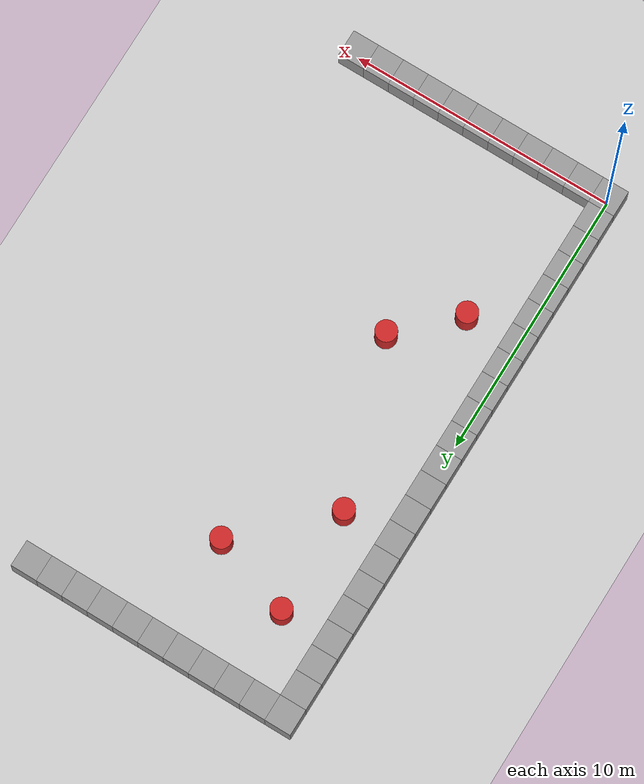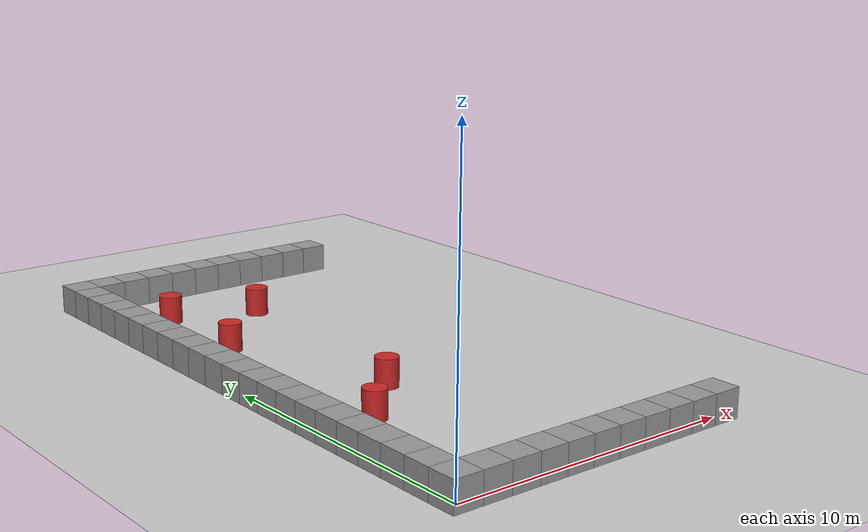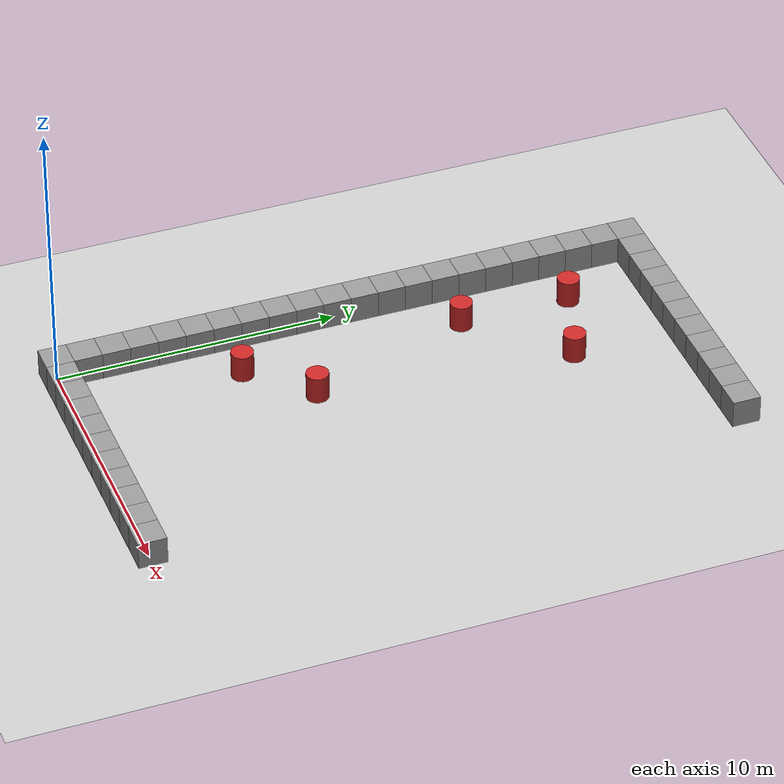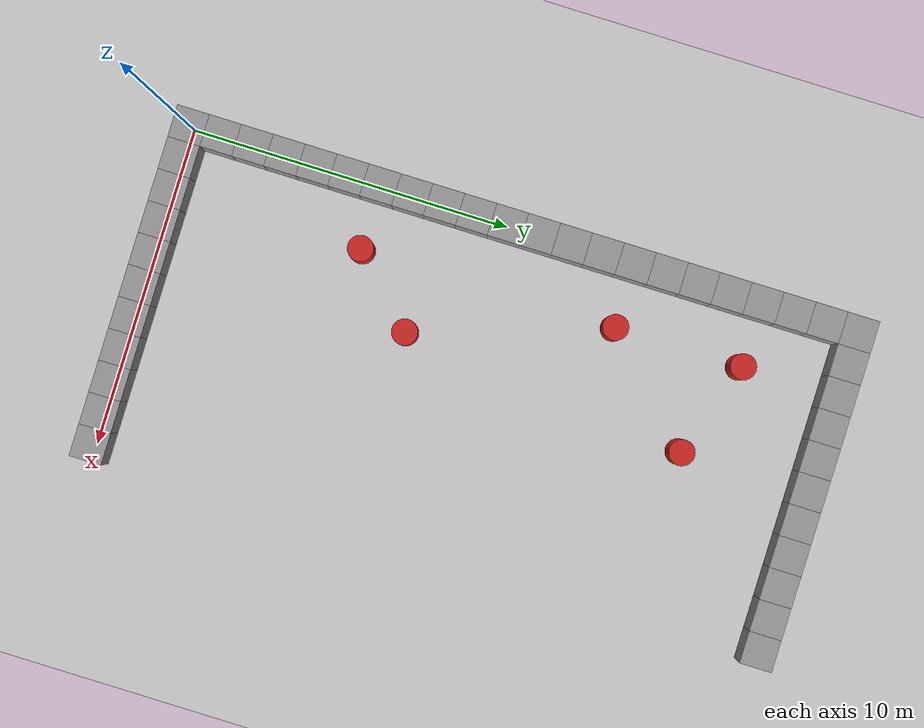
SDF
<sdf version="1.4">
 <world name="default">
  <model name="ground_plane">
   <static>1</static>
   <link name="link">
    <collision name="collision">
     <geometry><plane><normal>0 0 1</normal><size>100 100</size></plane></geometry>
     <surface><friction><ode><mu>100</mu><mu2>50</mu2></ode></friction></surface>
    </collision>
    <visual name="visual">
     <cast_shadows>0</cast_shadows>
     <geometry><plane><normal>0 0 1</normal><size>100 100</size></plane></geometry>
     <material>
      <script><uri>file://media/materials/scripts/gazebo.material</uri><name>Gazebo/Grey</name></script>
     </material>
    </visual>
    <velocity_decay><linear>0</linear><angular>0</angular></velocity_decay>
   </link>
  </model>
  <model name="unit_box_1">
   <pose>0 0 0.5 0 -0 0.0</pose>
   <link name="link">
    <inertial>
     <mass>1</mass>
     <inertia><ixx>1</ixx><ixy>0</ixy><ixz>0</ixz><iyy>1</iyy><iyz>0</iyz><izz>1</izz></inertia>
    </inertial>
    <collision name="collision"><geometry><box><size>1 1 1</size></box></geometry></collision>
    <visual name="visual">
     <geometry><box><size>1 1 1</size></box></geometry>
     <material>
      <script><uri>file://media/materials/scripts/gazebo.material</uri><name>Gazebo/Grey</name></script>
     </material>
    </visual>
    <velocity_decay><linear>0</linear><angular>0</angular></velocity_decay>
   </link>
   <static>1</static>
  </model>
  <model name="unit_box_40">
   <pose>0 1 0.5 0 -0 0</pose>
   <link name="link">
    <inertial>
     <mass>1</mass>
     <inertia><ixx>1</ixx><ixy>0</ixy><ixz>0</ixz><iyy>1</iyy><iyz>0</iyz><izz>1</izz></inertia>
    </inertial>
    <collision name="collision"><geometry><box><size>1 1 1</size></box></geometry></collision>
    <visual name="visual">
     <geometry><box><size>1 1 1</size></box></geometry>
     <material>
      <script><uri>file://media/materials/scripts/gazebo.material</uri><name>Gazebo/Grey</name></script>
     </material>
    </visual>
    <velocity_decay><linear>0</linear><angular>0</angular></velocity_decay>
   </link>
   <static>1</static>
  </model>
  <model name="unit_box_41">
   <pose>0 2 0.5 0 -0 0</pose>
   <link name="link">
    <inertial>
     <mass>1</mass>
     <inertia><ixx>1</ixx><ixy>0</ixy><ixz>0</ixz><iyy>1</iyy><iyz>0</iyz><izz>1</izz></inertia>
    </inertial>
    <collision name="collision"><geometry><box><size>1 1 1</size></box></geometry></collision>
    <visual name="visual">
     <geometry><box><size>1 1 1</size></box></geometry>
     <material>
      <script><uri>file://media/materials/scripts/gazebo.material</uri><name>Gazebo/Grey</name></script>
     </material>
    </visual>
    <velocity_decay><linear>0</linear><angular>0</angular></velocity_decay>
   </link>
   <static>1</static>
  </model>
  <model name="unit_box_42">
   <pose>0 3 0.5 0 -0 0</pose>
   <link name="link">
    <inertial>
     <mass>1</mass>
     <inertia><ixx>1</ixx><ixy>0</ixy><ixz>0</ixz><iyy>1</iyy><iyz>0</iyz><izz>1</izz></inertia>
    </inertial>
    <collision name="collision"><geometry><box><size>1 1 1</size></box></geometry></collision>
    <visual name="visual">
     <geometry><box><size>1 1 1</size></box></geometry>
     <material>
      <script><uri>file://media/materials/scripts/gazebo.material</uri><name>Gazebo/Grey</name></script>
     </material>
    </visual>
    <velocity_decay><linear>0</linear><angular>0</angular></velocity_decay>
   </link>
   <static>1</static>
  </model>
  <model name="unit_box_43">
   <pose>0 4 0.5 0 -0 0</pose>
   <link name="link">
    <inertial>
     <mass>1</mass>
     <inertia><ixx>1</ixx><ixy>0</ixy><ixz>0</ixz><iyy>1</iyy><iyz>0</iyz><izz>1</izz></inertia>
    </inertial>
    <collision name="collision"><geometry><box><size>1 1 1</size></box></geometry></collision>
    <visual name="visual">
     <geometry><box><size>1 1 1</size></box></geometry>
     <material>
      <script><uri>file://media/materials/scripts/gazebo.material</uri><name>Gazebo/Grey</name></script>
     </material>
    </visual>
    <velocity_decay><linear>0</linear><angular>0</angular></velocity_decay>
   </link>
   <static>1</static>
  </model>
  <model name="unit_box_44">
   <pose>0 5 0.5 0 -0 0</pose>
   <link name="link">
    <inertial>
     <mass>1</mass>
     <inertia><ixx>1</ixx><ixy>0</ixy><ixz>0</ixz><iyy>1</iyy><iyz>0</iyz><izz>1</izz></inertia>
    </inertial>
    <collision name="collision"><geometry><box><size>1 1 1</size></box></geometry></collision>
    <visual name="visual">
     <geometry><box><size>1 1 1</size></box></geometry>
     <material>
      <script><uri>file://media/materials/scripts/gazebo.material</uri><name>Gazebo/Grey</name></script>
     </material>
    </visual>
    <velocity_decay><linear>0</linear><angular>0</angular></velocity_decay>
   </link>
   <static>1</static>
  </model>
  <model name="unit_box_45">
   <pose>0 6 0.5 0 -0 0</pose>
   <link name="link">
    <inertial>
     <mass>1</mass>
     <inertia><ixx>1</ixx><ixy>0</ixy><ixz>0</ixz><iyy>1</iyy><iyz>0</iyz><izz>1</izz></inertia>
    </inertial>
    <collision name="collision"><geometry><box><size>1 1 1</size></box></geometry></collision>
    <visual name="visual">
     <geometry><box><size>1 1 1</size></box></geometry>
     <material>
      <script><uri>file://media/materials/scripts/gazebo.material</uri><name>Gazebo/Grey</name></script>
     </material>
    </visual>
    <velocity_decay><linear>0</linear><angular>0</angular></velocity_decay>
   </link>
   <static>1</static>
  </model>
  <model name="unit_box_46">
   <pose>0 7 0.5 0 -0 0</pose>
   <link name="link">
    <inertial>
     <mass>1</mass>
     <inertia><ixx>1</ixx><ixy>0</ixy><ixz>0</ixz><iyy>1</iyy><iyz>0</iyz><izz>1</izz></inertia>
    </inertial>
    <collision name="collision"><geometry><box><size>1 1 1</size></box></geometry></collision>
    <visual name="visual">
     <geometry><box><size>1 1 1</size></box></geometry>
     <material>
      <script><uri>file://media/materials/scripts/gazebo.material</uri><name>Gazebo/Grey</name></script>
     </material>
    </visual>
    <velocity_decay><linear>0</linear><angular>0</angular></velocity_decay>
   </link>
   <static>1</static>
  </model>
  <model name="unit_box_47">
   <pose>0 8 0.5 0 -0 0</pose>
   <link name="link">
    <inertial>
     <mass>1</mass>
     <inertia><ixx>1</ixx><ixy>0</ixy><ixz>0</ixz><iyy>1</iyy><iyz>0</iyz><izz>1</izz></inertia>
    </inertial>
    <collision name="collision"><geometry><box><size>1 1 1</size></box></geometry></collision>
    <visual name="visual">
     <geometry><box><size>1 1 1</size></box></geometry>
     <material>
      <script><uri>file://media/materials/scripts/gazebo.material</uri><name>Gazebo/Grey</name></script>
     </material>
    </visual>
    <velocity_decay><linear>0</linear><angular>0</angular></velocity_decay>
   </link>
   <static>1</static>
  </model>
  <model name="unit_box_61">
   <pose>0 9 0.5 0 -0 0</pose>
   <link name="link">
    <inertial>
     <mass>1</mass>
     <inertia><ixx>1</ixx><ixy>0</ixy><ixz>0</ixz><iyy>1</iyy><iyz>0</iyz><izz>1</izz></inertia>
    </inertial>
    <collision name="collision"><geometry><box><size>1 1 1</size></box></geometry></collision>
    <visual name="visual">
     <geometry><box><size>1 1 1</size></box></geometry>
     <material>
      <script><uri>file://media/materials/scripts/gazebo.material</uri><name>Gazebo/Grey</name></script>
     </material>
    </visual>
    <velocity_decay><linear>0</linear><angular>0</angular></velocity_decay>
   </link>
   <static>1</static>
  </model>
  <model name="unit_box_67">
   <pose>0 10 0.5 0 -0 0</pose>
   <link name="link">
    <inertial>
     <mass>1</mass>
     <inertia><ixx>1</ixx><ixy>0</ixy><ixz>0</ixz><iyy>1</iyy><iyz>0</iyz><izz>1</izz></inertia>
    </inertial>
    <collision name="collision"><geometry><box><size>1 1 1</size></box></geometry></collision>
    <visual name="visual">
     <geometry><box><size>1 1 1</size></box></geometry>
     <material>
      <script><uri>file://media/materials/scripts/gazebo.material</uri><name>Gazebo/Grey</name></script>
     </material>
    </visual>
    <velocity_decay><linear>0</linear><angular>0</angular></velocity_decay>
   </link>
   <static>1</static>
  </model>
  <model name="unit_box_68">
   <pose>0 11 0.5 0 -0 0</pose>
   <link name="link">
    <inertial>
     <mass>1</mass>
     <inertia><ixx>1</ixx><ixy>0</ixy><ixz>0</ixz><iyy>1</iyy><iyz>0</iyz><izz>1</izz></inertia>
    </inertial>
    <collision name="collision"><geometry><box><size>1 1 1</size></box></geometry></collision>
    <visual name="visual">
     <geometry><box><size>1 1 1</size></box></geometry>
     <material>
      <script><uri>file://media/materials/scripts/gazebo.material</uri><name>Gazebo/Grey</name></script>
     </material>
    </visual>
    <velocity_decay><linear>0</linear><angular>0</angular></velocity_decay>
   </link>
   <static>1</static>
  </model>
  <model name="unit_box_69">
   <pose>0 12 0.5 0 -0 0</pose>
   <link name="link">
    <inertial>
     <mass>1</mass>
     <inertia><ixx>1</ixx><ixy>0</ixy><ixz>0</ixz><iyy>1</iyy><iyz>0</iyz><izz>1</izz></inertia>
    </inertial>
    <collision name="collision"><geometry><box><size>1 1 1</size></box></geometry></collision>
    <visual name="visual">
     <geometry><box><size>1 1 1</size></box></geometry>
     <material>
      <script><uri>file://media/materials/scripts/gazebo.material</uri><name>Gazebo/Grey</name></script>
     </material>
    </visual>
    <velocity_decay><linear>0</linear><angular>0</angular></velocity_decay>
   </link>
   <static>1</static>
  </model>
  <model name="unit_box_72">
   <pose>0 13 0.5 0 -0 0</pose>
   <link name="link">
    <inertial>
     <mass>1</mass>
     <inertia><ixx>1</ixx><ixy>0</ixy><ixz>0</ixz><iyy>1</iyy><iyz>0</iyz><izz>1</izz></inertia>
    </inertial>
    <collision name="collision"><geometry><box><size>1 1 1</size></box></geometry></collision>
    <visual name="visual">
     <geometry><box><size>1 1 1</size></box></geometry>
     <material>
      <script><uri>file://media/materials/scripts/gazebo.material</uri><name>Gazebo/Grey</name></script>
     </material>
    </visual>
    <velocity_decay><linear>0</linear><angular>0</angular></velocity_decay>
   </link>
   <static>1</static>
  </model>
  <model name="unit_box_73">
   <pose>0 14 0.5 0 -0 0</pose>
   <link name="link">
    <inertial>
     <mass>1</mass>
     <inertia><ixx>1</ixx><ixy>0</ixy><ixz>0</ixz><iyy>1</iyy><iyz>0</iyz><izz>1</izz></inertia>
    </inertial>
    <collision name="collision"><geometry><box><size>1 1 1</size></box></geometry></collision>
    <visual name="visual">
     <geometry><box><size>1 1 1</size></box></geometry>
     <material>
      <script><uri>file://media/materials/scripts/gazebo.material</uri><name>Gazebo/Grey</name></script>
     </material>
    </visual>
    <velocity_decay><linear>0</linear><angular>0</angular></velocity_decay>
   </link>
   <static>1</static>
  </model>
  <model name="unit_box_74">
   <pose>0 15 0.5 0 -0 0</pose>
   <link name="link">
    <inertial>
     <mass>1</mass>
     <inertia><ixx>1</ixx><ixy>0</ixy><ixz>0</ixz><iyy>1</iyy><iyz>0</iyz><izz>1</izz></inertia>
    </inertial>
    <collision name="collision"><geometry><box><size>1 1 1</size></box></geometry></collision>
    <visual name="visual">
     <geometry><box><size>1 1 1</size></box></geometry>
     <material>
      <script><uri>file://media/materials/scripts/gazebo.material</uri><name>Gazebo/Grey</name></script>
     </material>
    </visual>
    <velocity_decay><linear>0</linear><angular>0</angular></velocity_decay>
   </link>
   <static>1</static>
  </model>
  <model name="unit_box_75">
   <pose>0 16 0.5 0 -0 0</pose>
   <link name="link">
    <inertial>
     <mass>1</mass>
     <inertia><ixx>1</ixx><ixy>0</ixy><ixz>0</ixz><iyy>1</iyy><iyz>0</iyz><izz>1</izz></inertia>
    </inertial>
    <collision name="collision"><geometry><box><size>1 1 1</size></box></geometry></collision>
    <visual name="visual">
     <geometry><box><size>1 1 1</size></box></geometry>
     <material>
      <script><uri>file://media/materials/scripts/gazebo.material</uri><name>Gazebo/Grey</name></script>
     </material>
    </visual>
    <velocity_decay><linear>0</linear><angular>0</angular></velocity_decay>
   </link>
   <static>1</static>
  </model>
  <model name="unit_box_76">
   <pose>0 17 0.5 0 -0 0</pose>
   <link name="link">
    <inertial>
     <mass>1</mass>
     <inertia><ixx>1</ixx><ixy>0</ixy><ixz>0</ixz><iyy>1</iyy><iyz>0</iyz><izz>1</izz></inertia>
    </inertial>
    <collision name="collision"><geometry><box><size>1 1 1</size></box></geometry></collision>
    <visual name="visual">
     <geometry><box><size>1 1 1</size></box></geometry>
     <material>
      <script><uri>file://media/materials/scripts/gazebo.material</uri><name>Gazebo/Grey</name></script>
     </material>
    </visual>
    <velocity_decay><linear>0</linear><angular>0</angular></velocity_decay>
   </link>
   <static>1</static>
  </model>
  <model name="unit_box_77">
   <pose>0 18 0.5 0 -0 0</pose>
   <link name="link">
    <inertial>
     <mass>1</mass>
     <inertia><ixx>1</ixx><ixy>0</ixy><ixz>0</ixz><iyy>1</iyy><iyz>0</iyz><izz>1</izz></inertia>
    </inertial>
    <collision name="collision"><geometry><box><size>1 1 1</size></box></geometry></collision>
    <visual name="visual">
     <geometry><box><size>1 1 1</size></box></geometry>
     <material>
      <script><uri>file://media/materials/scripts/gazebo.material</uri><name>Gazebo/Grey</name></script>
     </material>
    </visual>
    <velocity_decay><linear>0</linear><angular>0</angular></velocity_decay>
   </link>
   <static>1</static>
  </model>
  <model name="unit_box_78">
   <pose>0 19 0.5 0 -0 0</pose>
   <link name="link">
    <inertial>
     <mass>1</mass>
     <inertia><ixx>1</ixx><ixy>0</ixy><ixz>0</ixz><iyy>1</iyy><iyz>0</iyz><izz>1</izz></inertia>
    </inertial>
    <collision name="collision"><geometry><box><size>1 1 1</size></box></geometry></collision>
    <visual name="visual">
     <geometry><box><size>1 1 1</size></box></geometry>
     <material>
      <script><uri>file://media/materials/scripts/gazebo.material</uri><name>Gazebo/Grey</name></script>
     </material>
    </visual>
    <velocity_decay><linear>0</linear><angular>0</angular></velocity_decay>
   </link>
   <static>1</static>
  </model>
  <model name="unit_box_79">
   <pose>0 20 0.5 0 -0 0</pose>
   <link name="link">
    <inertial>
     <mass>1</mass>
     <inertia><ixx>1</ixx><ixy>0</ixy><ixz>0</ixz><iyy>1</iyy><iyz>0</iyz><izz>1</izz></inertia>
    </inertial>
    <collision name="collision"><geometry><box><size>1 1 1</size></box></geometry></collision>
    <visual name="visual">
     <geometry><box><size>1 1 1</size></box></geometry>
     <material>
      <script><uri>file://media/materials/scripts/gazebo.material</uri><name>Gazebo/Grey</name></script>
     </material>
    </visual>
    <velocity_decay><linear>0</linear><angular>0</angular></velocity_decay>
   </link>
   <static>1</static>
  </model>
  <model name="unit_box_300">
   <pose>0 21 0.5 0 -0 0</pose>
   <link name="link">
    <inertial>
     <mass>1</mass>
     <inertia><ixx>1</ixx><ixy>0</ixy><ixz>0</ixz><iyy>1</iyy><iyz>0</iyz><izz>1</izz></inertia>
    </inertial>
    <collision name="collision"><geometry><box><size>1 1 1</size></box></geometry></collision>
    <visual name="visual">
     <geometry><box><size>1 1 1</size></box></geometry>
     <material>
      <script><uri>file://media/materials/scripts/gazebo.material</uri><name>Gazebo/Grey</name></script>
     </material>
    </visual>
    <velocity_decay><linear>0</linear><angular>0</angular></velocity_decay>
   </link>
   <static>1</static>
  </model>
  <model name="unit_box_80">
   <pose>1 0 0.5 0 -0 0</pose>
   <link name="link">
    <inertial>
     <mass>1</mass>
     <inertia><ixx>1</ixx><ixy>0</ixy><ixz>0</ixz><iyy>1</iyy><iyz>0</iyz><izz>1</izz></inertia>
    </inertial>
    <collision name="collision"><geometry><box><size>1 1 1</size></box></geometry></collision>
    <visual name="visual">
     <geometry><box><size>1 1 1</size></box></geometry>
     <material>
      <script><uri>file://media/materials/scripts/gazebo.material</uri><name>Gazebo/Grey</name></script>
     </material>
    </visual>
    <velocity_decay><linear>0</linear><angular>0</angular></velocity_decay>
   </link>
   <static>1</static>
  </model>
  <model name="unit_box_96">
   <pose>2 0 0.5 0 -0 0</pose>
   <link name="link">
    <inertial>
     <mass>1</mass>
     <inertia><ixx>1</ixx><ixy>0</ixy><ixz>0</ixz><iyy>1</iyy><iyz>0</iyz><izz>1</izz></inertia>
    </inertial>
    <collision name="collision"><geometry><box><size>1 1 1</size></box></geometry></collision>
    <visual name="visual">
     <geometry><box><size>1 1 1</size></box></geometry>
     <material>
      <script><uri>file://media/materials/scripts/gazebo.material</uri><name>Gazebo/Grey</name></script>
     </material>
    </visual>
    <velocity_decay><linear>0</linear><angular>0</angular></velocity_decay>
   </link>
   <static>1</static>
  </model>
  <model name="unit_box_97">
   <pose>3 0 0.5 0 -0 0</pose>
   <link name="link">
    <inertial>
     <mass>1</mass>
     <inertia><ixx>1</ixx><ixy>0</ixy><ixz>0</ixz><iyy>1</iyy><iyz>0</iyz><izz>1</izz></inertia>
    </inertial>
    <collision name="collision"><geometry><box><size>1 1 1</size></box></geometry></collision>
    <visual name="visual">
     <geometry><box><size>1 1 1</size></box></geometry>
     <material>
      <script><uri>file://media/materials/scripts/gazebo.material</uri><name>Gazebo/Grey</name></script>
     </material>
    </visual>
    <velocity_decay><linear>0</linear><angular>0</angular></velocity_decay>
   </link>
   <static>1</static>
  </model>
  <model name="unit_box_98">
   <pose>4 0 0.5 0 -0 0</pose>
   <link name="link">
    <inertial>
     <mass>1</mass>
     <inertia><ixx>1</ixx><ixy>0</ixy><ixz>0</ixz><iyy>1</iyy><iyz>0</iyz><izz>1</izz></inertia>
    </inertial>
    <collision name="collision"><geometry><box><size>1 1 1</size></box></geometry></collision>
    <visual name="visual">
     <geometry><box><size>1 1 1</size></box></geometry>
     <material>
      <script><uri>file://media/materials/scripts/gazebo.material</uri><name>Gazebo/Grey</name></script>
     </material>
    </visual>
    <velocity_decay><linear>0</linear><angular>0</angular></velocity_decay>
   </link>
   <static>1</static>
  </model>
  <model name="unit_box_99">
   <pose>5 0 0.5 0 -0 0</pose>
   <link name="link">
    <inertial>
     <mass>1</mass>
     <inertia><ixx>1</ixx><ixy>0</ixy><ixz>0</ixz><iyy>1</iyy><iyz>0</iyz><izz>1</izz></inertia>
    </inertial>
    <collision name="collision"><geometry><box><size>1 1 1</size></box></geometry></collision>
    <visual name="visual">
     <geometry><box><size>1 1 1</size></box></geometry>
     <material>
      <script><uri>file://media/materials/scripts/gazebo.material</uri><name>Gazebo/Grey</name></script>
     </material>
    </visual>
    <velocity_decay><linear>0</linear><angular>0</angular></velocity_decay>
   </link>
   <static>1</static>
  </model>
  <model name="unit_box_100">
   <pose>6 0 0.5 0 0 0</pose>
   <link name="link">
    <inertial>
     <mass>1</mass>
     <inertia><ixx>1</ixx><ixy>0</ixy><ixz>0</ixz><iyy>1</iyy><iyz>0</iyz><izz>1</izz></inertia>
    </inertial>
    <collision name="collision"><geometry><box><size>1 1 1</size></box></geometry></collision>
    <visual name="visual">
     <geometry><box><size>1 1 1</size></box></geometry>
     <material>
      <script><uri>file://media/materials/scripts/gazebo.material</uri><name>Gazebo/Grey</name></script>
     </material>
    </visual>
    <velocity_decay><linear>0</linear><angular>0</angular></velocity_decay>
   </link>
   <static>1</static>
  </model>
  <model name="unit_box_101">
   <pose>7 0 0.5 0 -0 0</pose>
   <link name="link">
    <inertial>
     <mass>1</mass>
     <inertia><ixx>1</ixx><ixy>0</ixy><ixz>0</ixz><iyy>1</iyy><iyz>0</iyz><izz>1</izz></inertia>
    </inertial>
    <collision name="collision"><geometry><box><size>1 1 1</size></box></geometry></collision>
    <visual name="visual">
     <geometry><box><size>1 1 1</size></box></geometry>
     <material>
      <script><uri>file://media/materials/scripts/gazebo.material</uri><name>Gazebo/Grey</name></script>
     </material>
    </visual>
    <velocity_decay><linear>0</linear><angular>0</angular></velocity_decay>
   </link>
   <static>1</static>
  </model>
  <model name="unit_box_102">
   <pose>8 0 0.5 0 0 0</pose>
   <link name="link">
    <inertial>
     <mass>1</mass>
     <inertia><ixx>1</ixx><ixy>0</ixy><ixz>0</ixz><iyy>1</iyy><iyz>0</iyz><izz>1</izz></inertia>
    </inertial>
    <collision name="collision"><geometry><box><size>1 1 1</size></box></geometry></collision>
    <visual name="visual">
     <geometry><box><size>1 1 1</size></box></geometry>
     <material>
      <script><uri>file://media/materials/scripts/gazebo.material</uri><name>Gazebo/Grey</name></script>
     </material>
    </visual>
    <velocity_decay><linear>0</linear><angular>0</angular></velocity_decay>
   </link>
   <static>1</static>
  </model>
  <model name="unit_box_103">
   <pose>9 0 0.5 0 -0 0</pose>
   <link name="link">
    <inertial>
     <mass>1</mass>
     <inertia><ixx>1</ixx><ixy>0</ixy><ixz>0</ixz><iyy>1</iyy><iyz>0</iyz><izz>1</izz></inertia>
    </inertial>
    <collision name="collision"><geometry><box><size>1 1 1</size></box></geometry></collision>
    <visual name="visual">
     <geometry><box><size>1 1 1</size></box></geometry>
     <material>
      <script><uri>file://media/materials/scripts/gazebo.material</uri><name>Gazebo/Grey</name></script>
     </material>
    </visual>
    <velocity_decay><linear>0</linear><angular>0</angular></velocity_decay>
   </link>
   <static>1</static>
  </model>
  <model name="unit_box_104">
   <pose>10 0 0.5 0 -0 0</pose>
   <link name="link">
    <inertial>
     <mass>1</mass>
     <inertia><ixx>1</ixx><ixy>0</ixy><ixz>0</ixz><iyy>1</iyy><iyz>0</iyz><izz>1</izz></inertia>
    </inertial>
    <collision name="collision"><geometry><box><size>1 1 1</size></box></geometry></collision>
    <visual name="visual">
     <geometry><box><size>1 1 1</size></box></geometry>
     <material>
      <script><uri>file://media/materials/scripts/gazebo.material</uri><name>Gazebo/Grey</name></script>
     </material>
    </visual>
    <velocity_decay><linear>0</linear><angular>0</angular></velocity_decay>
   </link>
   <static>1</static>
  </model>
  <model name="unit_box_115">
   <pose>1 21 0.5 0 -0 0</pose>
   <link name="link">
    <inertial>
     <mass>1</mass>
     <inertia><ixx>1</ixx><ixy>0</ixy><ixz>0</ixz><iyy>1</iyy><iyz>0</iyz><izz>1</izz></inertia>
    </inertial>
    <collision name="collision"><geometry><box><size>1 1 1</size></box></geometry></collision>
    <visual name="visual">
     <geometry><box><size>1 1 1</size></box></geometry>
     <material>
      <script><uri>file://media/materials/scripts/gazebo.material</uri><name>Gazebo/Grey</name></script>
     </material>
    </visual>
    <velocity_decay><linear>0</linear><angular>0</angular></velocity_decay>
   </link>
   <static>1</static>
  </model>
  <model name="unit_box_116">
   <pose>2 21 0.5 0 -0 0</pose>
   <link name="link">
    <inertial>
     <mass>1</mass>
     <inertia><ixx>1</ixx><ixy>0</ixy><ixz>0</ixz><iyy>1</iyy><iyz>0</iyz><izz>1</izz></inertia>
    </inertial>
    <collision name="collision"><geometry><box><size>1 1 1</size></box></geometry></collision>
    <visual name="visual">
     <geometry><box><size>1 1 1</size></box></geometry>
     <material>
      <script><uri>file://media/materials/scripts/gazebo.material</uri><name>Gazebo/Grey</name></script>
     </material>
    </visual>
    <velocity_decay><linear>0</linear><angular>0</angular></velocity_decay>
   </link>
   <static>1</static>
  </model>
  <model name="unit_box_121">
   <pose>3 21 0.5 0 -0 0</pose>
   <link name="link">
    <inertial>
     <mass>1</mass>
     <inertia><ixx>1</ixx><ixy>0</ixy><ixz>0</ixz><iyy>1</iyy><iyz>0</iyz><izz>1</izz></inertia>
    </inertial>
    <collision name="collision"><geometry><box><size>1 1 1</size></box></geometry></collision>
    <visual name="visual">
     <geometry><box><size>1 1 1</size></box></geometry>
     <material>
      <script><uri>file://media/materials/scripts/gazebo.material</uri><name>Gazebo/Grey</name></script>
     </material>
    </visual>
    <velocity_decay><linear>0</linear><angular>0</angular></velocity_decay>
   </link>
   <static>1</static>
  </model>
  <model name="unit_box_134">
   <pose>4 21 0.5 0 -0 0</pose>
   <link name="link">
    <inertial>
     <mass>1</mass>
     <inertia><ixx>1</ixx><ixy>0</ixy><ixz>0</ixz><iyy>1</iyy><iyz>0</iyz><izz>1</izz></inertia>
    </inertial>
    <collision name="collision"><geometry><box><size>1 1 1</size></box></geometry></collision>
    <visual name="visual">
     <geometry><box><size>1 1 1</size></box></geometry>
     <material>
      <script><uri>file://media/materials/scripts/gazebo.material</uri><name>Gazebo/Grey</name></script>
     </material>
    </visual>
    <velocity_decay><linear>0</linear><angular>0</angular></velocity_decay>
   </link>
   <static>1</static>
  </model>
  <model name="unit_box_135">
   <pose>5 21 0.5 0 0 0</pose>
   <link name="link">
    <inertial>
     <mass>1</mass>
     <inertia><ixx>1</ixx><ixy>0</ixy><ixz>0</ixz><iyy>1</iyy><iyz>0</iyz><izz>1</izz></inertia>
    </inertial>
    <collision name="collision"><geometry><box><size>1 1 1</size></box></geometry></collision>
    <visual name="visual">
     <geometry><box><size>1 1 1</size></box></geometry>
     <material>
      <script><uri>file://media/materials/scripts/gazebo.material</uri><name>Gazebo/Grey</name></script>
     </material>
    </visual>
    <velocity_decay><linear>0</linear><angular>0</angular></velocity_decay>
   </link>
   <static>1</static>
  </model>
  <model name="unit_box_136">
   <pose>6 21 0.5 0 0 0</pose>
   <link name="link">
    <inertial>
     <mass>1</mass>
     <inertia><ixx>1</ixx><ixy>0</ixy><ixz>0</ixz><iyy>1</iyy><iyz>0</iyz><izz>1</izz></inertia>
    </inertial>
    <collision name="collision"><geometry><box><size>1 1 1</size></box></geometry></collision>
    <visual name="visual">
     <geometry><box><size>1 1 1</size></box></geometry>
     <material>
      <script><uri>file://media/materials/scripts/gazebo.material</uri><name>Gazebo/Grey</name></script>
     </material>
    </visual>
    <velocity_decay><linear>0</linear><angular>0</angular></velocity_decay>
   </link>
   <static>1</static>
  </model>
  <model name="unit_box_137">
   <pose>7 21 0.5 0 0 0</pose>
   <link name="link">
    <inertial>
     <mass>1</mass>
     <inertia><ixx>1</ixx><ixy>0</ixy><ixz>0</ixz><iyy>1</iyy><iyz>0</iyz><izz>1</izz></inertia>
    </inertial>
    <collision name="collision"><geometry><box><size>1 1 1</size></box></geometry></collision>
    <visual name="visual">
     <geometry><box><size>1 1 1</size></box></geometry>
     <material>
      <script><uri>file://media/materials/scripts/gazebo.material</uri><name>Gazebo/Grey</name></script>
     </material>
    </visual>
    <velocity_decay><linear>0</linear><angular>0</angular></velocity_decay>
   </link>
   <static>1</static>
  </model>
  <model name="unit_box_146">
   <pose>8 21 0.5 0 -0 0</pose>
   <link name="link">
    <inertial>
     <mass>1</mass>
     <inertia><ixx>1</ixx><ixy>0</ixy><ixz>0</ixz><iyy>1</iyy><iyz>0</iyz><izz>1</izz></inertia>
    </inertial>
    <collision name="collision"><geometry><box><size>1 1 1</size></box></geometry></collision>
    <visual name="visual">
     <geometry><box><size>1 1 1</size></box></geometry>
     <material>
      <script><uri>file://media/materials/scripts/gazebo.material</uri><name>Gazebo/Grey</name></script>
     </material>
    </visual>
    <velocity_decay><linear>0</linear><angular>0</angular></velocity_decay>
   </link>
   <static>1</static>
  </model>
  <model name="unit_box_147">
   <pose>9 21 0.5 0 -0 0</pose>
   <link name="link">
    <inertial>
     <mass>1</mass>
     <inertia><ixx>1</ixx><ixy>0</ixy><ixz>0</ixz><iyy>1</iyy><iyz>0</iyz><izz>1</izz></inertia>
    </inertial>
    <collision name="collision"><geometry><box><size>1 1 1</size></box></geometry></collision>
    <visual name="visual">
     <geometry><box><size>1 1 1</size></box></geometry>
     <material>
      <script><uri>file://media/materials/scripts/gazebo.material</uri><name>Gazebo/Grey</name></script>
     </material>
    </visual>
    <velocity_decay><linear>0</linear><angular>0</angular></velocity_decay>
   </link>
   <static>1</static>
  </model>
  <model name="unit_box_148">
   <pose>10 21 0.5 0 -0 0</pose>
   <link name="link">
    <inertial>
     <mass>1</mass>
     <inertia><ixx>1</ixx><ixy>0</ixy><ixz>0</ixz><iyy>1</iyy><iyz>0</iyz><izz>1</izz></inertia>
    </inertial>
    <collision name="collision"><geometry><box><size>1 1 1</size></box></geometry></collision>
    <visual name="visual">
     <geometry><box><size>1 1 1</size></box></geometry>
     <material>
      <script><uri>file://media/materials/scripts/gazebo.material</uri><name>Gazebo/Grey</name></script>
     </material>
    </visual>
    <velocity_decay><linear>0</linear><angular>0</angular></velocity_decay>
   </link>
   <static>1</static>
  </model>
  <model name="unit_cylinder_1">
   <pose>2 6 0.5 -0 -0 0</pose>
   <link name="link">
    <inertial>
     <mass>1</mass>
     <inertia><ixx>1</ixx><ixy>0</ixy><ixz>0</ixz><iyy>1</iyy><iyz>0</iyz><izz>1</izz></inertia>
    </inertial>
    <collision name="collision">
     <geometry><cylinder><radius>0.40</radius><length>1</length></cylinder></geometry>
    </collision>
    <visual name="visual">
     <geometry><cylinder><radius>0.40</radius><length>1</length></cylinder></geometry>
     <material>
      <script><uri>file://media/materials/scripts/gazebo.material</uri><name>Gazebo/Red</name></script>
     </material>
    </visual>
    <velocity_decay><linear>0</linear><angular>0</angular></velocity_decay>
   </link>
   <static>1</static>
  </model>
  <model name="unit_cylinder_2">
   <pose>4 8 0.5 -0 -0 0</pose>
   <link name="link">
    <inertial>
     <mass>1</mass>
     <inertia><ixx>1</ixx><ixy>0</ixy><ixz>0</ixz><iyy>1</iyy><iyz>0</iyz><izz>1</izz></inertia>
    </inertial>
    <collision name="collision">
     <geometry><cylinder><radius>0.40</radius><length>1</length></cylinder></geometry>
    </collision>
    <visual name="visual">
     <geometry><cylinder><radius>0.40</radius><length>1</length></cylinder></geometry>
     <material>
      <script><uri>file://media/materials/scripts/gazebo.material</uri><name>Gazebo/Red</name></script>
     </material>
    </visual>
    <velocity_decay><linear>0</linear><angular>0</angular></velocity_decay>
   </link>
   <static>1</static>
  </model>
  <model name="unit_cylinder_4">
   <pose>5 17 0.5 0 -0 0</pose>
   <link name="link">
    <inertial>
     <mass>1</mass>
     <inertia><ixx>1</ixx><ixy>0</ixy><ixz>0</ixz><iyy>1</iyy><iyz>0</iyz><izz>1</izz></inertia>
    </inertial>
    <collision name="collision">
     <geometry><cylinder><radius>0.40</radius><length>1</length></cylinder></geometry>
    </collision>
    <visual name="visual">
     <geometry><cylinder><radius>0.40</radius><length>1</length></cylinder></geometry>
     <material>
      <script><uri>file://media/materials/scripts/gazebo.material</uri><name>Gazebo/Red</name></script>
     </material>
    </visual>
    <velocity_decay><linear>0</linear><angular>0</angular></velocity_decay>
   </link>
   <static>1</static>
  </model>
  <model name="unit_cylinder_5">
   <pose>2 14 0.5 0 -0 0</pose>
   <link name="link">
    <inertial>
     <mass>1</mass>
     <inertia><ixx>1</ixx><ixy>0</ixy><ixz>0</ixz><iyy>1</iyy><iyz>0</iyz><izz>1</izz></inertia>
    </inertial>
    <collision name="collision">
     <geometry><cylinder><radius>0.40</radius><length>1</length></cylinder></geometry>
    </collision>
    <visual name="visual">
     <geometry><cylinder><radius>0.40</radius><length>1</length></cylinder></geometry>
     <material>
      <script><uri>file://media/materials/scripts/gazebo.material</uri><name>Gazebo/Red</name></script>
     </material>
    </visual>
    <velocity_decay><linear>0</linear><angular>0</angular></velocity_decay>
   </link>
   <static>1</static>
  </model>
  <model name="unit_cylinder_6">
   <pose>2 18 0.5 0 -0 0</pose>
   <link name="link">
    <inertial>
     <mass>1</mass>
     <inertia><ixx>1</ixx><ixy>0</ixy><ixz>0</ixz><iyy>1</iyy><iyz>0</iyz><izz>1</izz></inertia>
    </inertial>
    <collision name="collision">
     <geometry><cylinder><radius>0.40</radius><length>1</length></cylinder></geometry>
    </collision>
    <visual name="visual">
     <geometry><cylinder><radius>0.40</radius><length>1</length></cylinder></geometry>
     <material>
      <script><uri>file://media/materials/scripts/gazebo.material</uri><name>Gazebo/Red</name></script>
     </material>
    </visual>
    <velocity_decay><linear>0</linear><angular>0</angular></velocity_decay>
   </link>
   <static>1</static>
  </model>
 </world>
</sdf>
